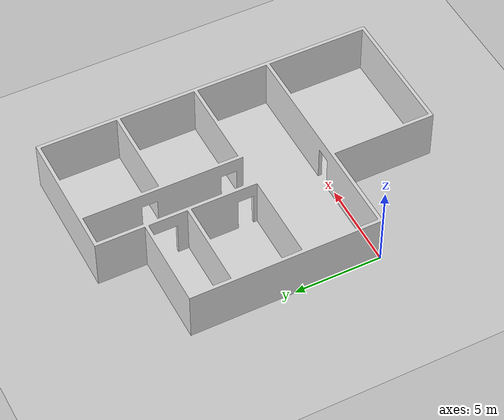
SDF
<?xml version="1.0"?>
<sdf version="1.6">
  <world name="default">

    <plugin name="gazebo_ros_state" filename="libgazebo_ros_state.so">
      <ros>
        <namespace>/gazebo</namespace>
      </ros>
    </plugin>

    <include>
      <uri>model://ground_plane</uri>
    </include>

    <include>
      <uri>model://sun</uri>
    </include>

    <scene>
      <shadows>false</shadows>
    </scene>

    <gui fullscreen='0'>
      <camera name='user_camera'>
        <pose frame=''>0.319654 -0.235002 9.29441 0 1.5138 0.009599</pose>
        <view_controller>orbit</view_controller>
        <projection_type>perspective</projection_type>
      </camera>
    </gui>

    <physics type="ode">
      <real_time_update_rate>1000.0</real_time_update_rate>
      <max_step_size>0.001</max_step_size>
      <real_time_factor>1</real_time_factor>
      <ode>
        <solver>
          <type>quick</type>
          <iters>150</iters>
          <precon_iters>0</precon_iters>
          <sor>1.400000</sor>
          <use_dynamic_moi_rescaling>1</use_dynamic_moi_rescaling>
        </solver>
        <constraints>
          <cfm>0.00001</cfm>
          <erp>0.2</erp>
          <contact_max_correcting_vel>20.000000</contact_max_correcting_vel>
          <contact_surface_layer>0.00100</contact_surface_layer>
        </constraints>
      </ode>
    </physics>

    <model name="Apt">
      <static>1</static>
      <pose>0 0 0 0 0 0</pose>
      <include>
        <uri>model://Apt</uri>
      </include>
    </model>

  </world>
</sdf>

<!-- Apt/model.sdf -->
<sdf version="1.6">
  <model name="gazebo_flat">
    <static>true</static>
    <link name="link">
      <collision name="collision">
        <geometry>
          <mesh>
            <uri>model://Apt/meshes/Apt.dae</uri>
            <scale>0.001 0.001 0.001</scale>
          </mesh>
        </geometry>
      </collision>
      <visual name="visual">
        <geometry>
          <mesh>
            <uri>model://Apt/meshes/Apt.dae</uri>
            <scale>0.001 0.001 0.001</scale>
          </mesh>
        </geometry>
      </visual>
    </link>
  </model>
</sdf>
